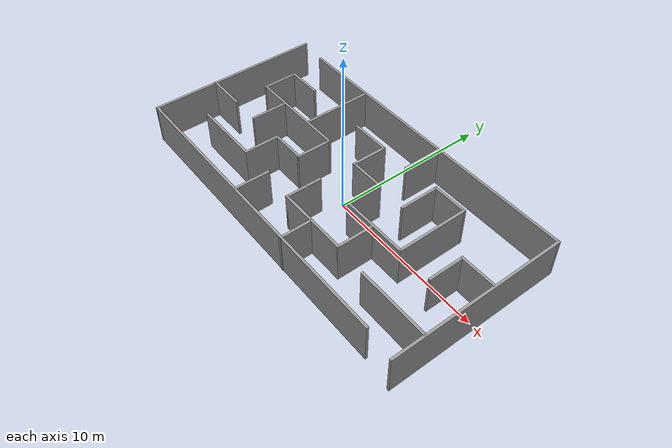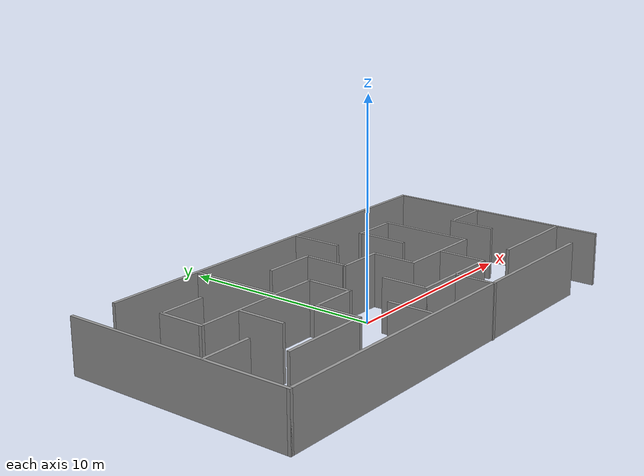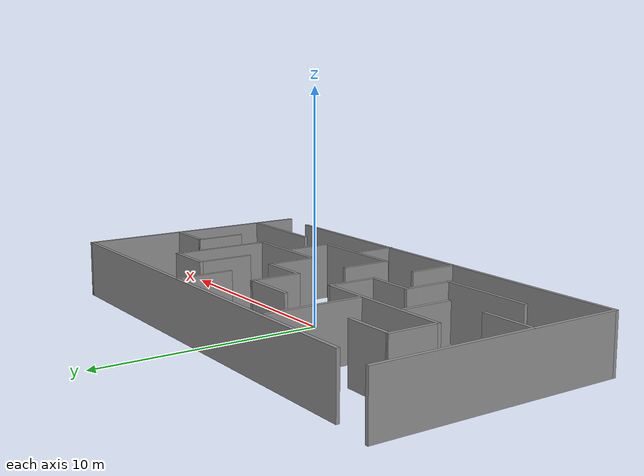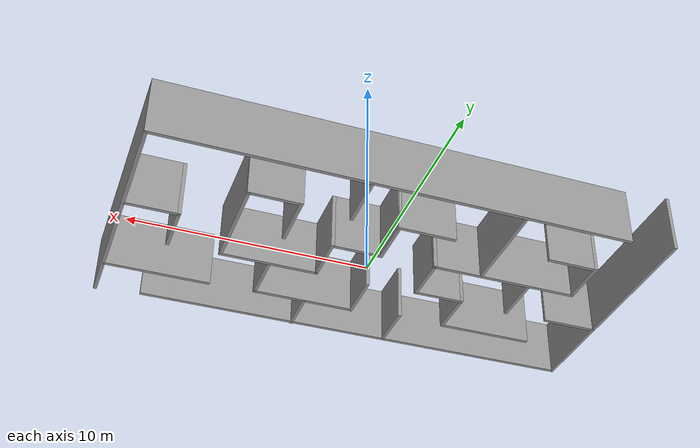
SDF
<?xml version='1.0'?>
<sdf version='1.7'>
  <model name='maze3'>
    <pose>-0.462397 0.132297 0 0 -0 0</pose>
    <link name='Wall_0'>
      <collision name='Wall_0_Collision'>
        <geometry>
          <box>
            <size>11 0.15 2.5</size>
          </box>
        </geometry>
        <pose>0 0 1.25 0 -0 0</pose>
      </collision>
      <visual name='Wall_0_Visual'>
        <pose>0 0 1.25 0 -0 0</pose>
        <geometry>
          <box>
            <size>11 0.15 2.5</size>
          </box>
        </geometry>
        <material>
          <script>
            <uri>file://media/materials/scripts/gazebo.material</uri>
            <name>Gazebo/Grey</name>
          </script>
          <ambient>1 1 1 1</ambient>
        </material>
        <meta>
          <layer>0</layer>
        </meta>
      </visual>
      <pose>-10.7709 0.101139 0 0 -0 -1.5708</pose>
    </link>
    <link name='Wall_1'>
      <collision name='Wall_1_Collision'>
        <geometry>
          <box>
            <size>19.75 0.15 2.5</size>
          </box>
        </geometry>
        <pose>0 0 1.25 0 -0 0</pose>
      </collision>
      <visual name='Wall_1_Visual'>
        <pose>0 0 1.25 0 -0 0</pose>
        <geometry>
          <box>
            <size>19.75 0.15 2.5</size>
          </box>
        </geometry>
        <material>
          <script>
            <uri>file://media/materials/scripts/gazebo.material</uri>
            <name>Gazebo/Grey</name>
          </script>
          <ambient>1 1 1 1</ambient>
        </material>
        <meta>
          <layer>0</layer>
        </meta>
      </visual>
      <pose>-0.970934 -5.32386 0 0 -0 0</pose>
    </link>
    <link name='Wall_10'>
      <collision name='Wall_10_Collision'>
        <geometry>
          <box>
            <size>2.25 0.15 2.5</size>
          </box>
        </geometry>
        <pose>0 0 1.25 0 -0 0</pose>
      </collision>
      <visual name='Wall_10_Visual'>
        <pose>0 0 1.25 0 -0 0</pose>
        <geometry>
          <box>
            <size>2.25 0.15 2.5</size>
          </box>
        </geometry>
        <material>
          <script>
            <uri>file://media/materials/scripts/gazebo.material</uri>
            <name>Gazebo/Grey</name>
          </script>
          <ambient>1 1 1 1</ambient>
        </material>
        <meta>
          <layer>0</layer>
        </meta>
      </visual>
      <pose>-3.21147 -1.17619 0 0 -0 0</pose>
    </link>
    <link name='Wall_11'>
      <collision name='Wall_11_Collision'>
        <geometry>
          <box>
            <size>2.25 0.15 2.5</size>
          </box>
        </geometry>
        <pose>0 0 1.25 0 -0 0</pose>
      </collision>
      <visual name='Wall_11_Visual'>
        <pose>0 0 1.25 0 -0 0</pose>
        <geometry>
          <box>
            <size>2.25 0.15 2.5</size>
          </box>
        </geometry>
        <material>
          <script>
            <uri>file://media/materials/scripts/gazebo.material</uri>
            <name>Gazebo/Grey</name>
          </script>
          <ambient>1 1 1 1</ambient>
        </material>
        <meta>
          <layer>0</layer>
        </meta>
      </visual>
      <pose>-2.16147 -0.126191 0 0 -0 1.5708</pose>
    </link>
    <link name='Wall_12'>
      <collision name='Wall_12_Collision'>
        <geometry>
          <box>
            <size>6.5 0.15 2.5</size>
          </box>
        </geometry>
        <pose>0 0 1.25 0 -0 0</pose>
      </collision>
      <visual name='Wall_12_Visual'>
        <pose>0 0 1.25 0 -0 0</pose>
        <geometry>
          <box>
            <size>6.5 0.15 2.5</size>
          </box>
        </geometry>
        <material>
          <script>
            <uri>file://media/materials/scripts/gazebo.material</uri>
            <name>Gazebo/Grey</name>
          </script>
          <ambient>1 1 1 1</ambient>
        </material>
        <meta>
          <layer>0</layer>
        </meta>
      </visual>
      <pose>-5.33647 0.923809 0 0 -0 3.14159</pose>
    </link>
    <link name='Wall_13'>
      <collision name='Wall_13_Collision'>
        <geometry>
          <box>
            <size>2.25 0.15 2.5</size>
          </box>
        </geometry>
        <pose>0 0 1.25 0 -0 0</pose>
      </collision>
      <visual name='Wall_13_Visual'>
        <pose>0 0 1.25 0 -0 0</pose>
        <geometry>
          <box>
            <size>2.25 0.15 2.5</size>
          </box>
        </geometry>
        <material>
          <script>
            <uri>file://media/materials/scripts/gazebo.material</uri>
            <name>Gazebo/Grey</name>
          </script>
          <ambient>1 1 1 1</ambient>
        </material>
        <meta>
          <layer>0</layer>
        </meta>
      </visual>
      <pose>-8.51147 1.97381 0 0 -0 1.5708</pose>
    </link>
    <link name='Wall_14'>
      <collision name='Wall_14_Collision'>
        <geometry>
          <box>
            <size>2.25 0.15 2.5</size>
          </box>
        </geometry>
        <pose>0 0 1.25 0 -0 0</pose>
      </collision>
      <visual name='Wall_14_Visual'>
        <pose>0 0 1.25 0 -0 0</pose>
        <geometry>
          <box>
            <size>2.25 0.15 2.5</size>
          </box>
        </geometry>
        <material>
          <script>
            <uri>file://media/materials/scripts/gazebo.material</uri>
            <name>Gazebo/Grey</name>
          </script>
          <ambient>1 1 1 1</ambient>
        </material>
        <meta>
          <layer>0</layer>
        </meta>
      </visual>
      <pose>-7.46147 3.02381 0 0 -0 0</pose>
    </link>
    <link name='Wall_16'>
      <collision name='Wall_16_Collision'>
        <geometry>
          <box>
            <size>2.25 0.15 2.5</size>
          </box>
        </geometry>
        <pose>0 0 1.25 0 -0 0</pose>
      </collision>
      <visual name='Wall_16_Visual'>
        <pose>0 0 1.25 0 -0 0</pose>
        <geometry>
          <box>
            <size>2.25 0.15 2.5</size>
          </box>
        </geometry>
        <material>
          <script>
            <uri>file://media/materials/scripts/gazebo.material</uri>
            <name>Gazebo/Grey</name>
          </script>
          <ambient>1 1 1 1</ambient>
        </material>
        <meta>
          <layer>0</layer>
        </meta>
      </visual>
      <pose>-6.47286 -0.257776 0 0 -0 1.5708</pose>
    </link>
    <link name='Wall_18'>
      <collision name='Wall_18_Collision'>
        <geometry>
          <box>
            <size>2.25 0.15 2.5</size>
          </box>
        </geometry>
        <pose>0 0 1.25 0 -0 0</pose>
      </collision>
      <visual name='Wall_18_Visual'>
        <pose>0 0 1.25 0 -0 0</pose>
        <geometry>
          <box>
            <size>2.25 0.15 2.5</size>
          </box>
        </geometry>
        <material>
          <script>
            <uri>file://media/materials/scripts/gazebo.material</uri>
            <name>Gazebo/Grey</name>
          </script>
          <ambient>1 1 1 1</ambient>
        </material>
        <meta>
          <layer>0</layer>
        </meta>
      </visual>
      <pose>-2.18354 -4.25897 0 0 -0 -1.5708</pose>
    </link>
    <link name='Wall_20'>
      <collision name='Wall_20_Collision'>
        <geometry>
          <box>
            <size>2.5 0.15 2.5</size>
          </box>
        </geometry>
        <pose>0 0 1.25 0 -0 0</pose>
      </collision>
      <visual name='Wall_20_Visual'>
        <pose>0 0 1.25 0 -0 0</pose>
        <geometry>
          <box>
            <size>2.5 0.15 2.5</size>
          </box>
        </geometry>
        <material>
          <script>
            <uri>file://media/materials/scripts/gazebo.material</uri>
            <name>Gazebo/Grey</name>
          </script>
          <ambient>1 1 1 1</ambient>
        </material>
        <meta>
          <layer>0</layer>
        </meta>
      </visual>
      <pose>-0.973356 2.9825 0 0 -0 0</pose>
    </link>
    <link name='Wall_21'>
      <collision name='Wall_21_Collision'>
        <geometry>
          <box>
            <size>2.25 0.15 2.5</size>
          </box>
        </geometry>
        <pose>0 0 1.25 0 -0 0</pose>
      </collision>
      <visual name='Wall_21_Visual'>
        <pose>0 0 1.25 0 -0 0</pose>
        <geometry>
          <box>
            <size>2.25 0.15 2.5</size>
          </box>
        </geometry>
        <material>
          <script>
            <uri>file://media/materials/scripts/gazebo.material</uri>
            <name>Gazebo/Grey</name>
          </script>
          <ambient>1 1 1 1</ambient>
        </material>
        <meta>
          <layer>0</layer>
        </meta>
      </visual>
      <pose>0.201644 1.9325 0 0 -0 -1.5708</pose>
    </link>
    <link name='Wall_22'>
      <collision name='Wall_22_Collision'>
        <geometry>
          <box>
            <size>2.25 0.15 2.5</size>
          </box>
        </geometry>
        <pose>0 0 1.25 0 -0 0</pose>
      </collision>
      <visual name='Wall_22_Visual'>
        <pose>0 0 1.25 0 -0 0</pose>
        <geometry>
          <box>
            <size>2.25 0.15 2.5</size>
          </box>
        </geometry>
        <material>
          <script>
            <uri>file://media/materials/scripts/gazebo.material</uri>
            <name>Gazebo/Grey</name>
          </script>
          <ambient>1 1 1 1</ambient>
        </material>
        <meta>
          <layer>0</layer>
        </meta>
      </visual>
      <pose>1.25164 0.882495 0 0 -0 0</pose>
    </link>
    <link name='Wall_23'>
      <collision name='Wall_23_Collision'>
        <geometry>
          <box>
            <size>2.25 0.15 2.5</size>
          </box>
        </geometry>
        <pose>0 0 1.25 0 -0 0</pose>
      </collision>
      <visual name='Wall_23_Visual'>
        <pose>0 0 1.25 0 -0 0</pose>
        <geometry>
          <box>
            <size>2.25 0.15 2.5</size>
          </box>
        </geometry>
        <material>
          <script>
            <uri>file://media/materials/scripts/gazebo.material</uri>
            <name>Gazebo/Grey</name>
          </script>
          <ambient>1 1 1 1</ambient>
        </material>
        <meta>
          <layer>0</layer>
        </meta>
      </visual>
      <pose>2.30164 -0.167505 0 0 -0 -1.5708</pose>
    </link>
    <link name='Wall_24'>
      <collision name='Wall_24_Collision'>
        <geometry>
          <box>
            <size>4.25 0.15 2.5</size>
          </box>
        </geometry>
        <pose>0 0 1.25 0 -0 0</pose>
      </collision>
      <visual name='Wall_24_Visual'>
        <pose>0 0 1.25 0 -0 0</pose>
        <geometry>
          <box>
            <size>4.25 0.15 2.5</size>
          </box>
        </geometry>
        <material>
          <script>
            <uri>file://media/materials/scripts/gazebo.material</uri>
            <name>Gazebo/Grey</name>
          </script>
          <ambient>1 1 1 1</ambient>
        </material>
        <meta>
          <layer>0</layer>
        </meta>
      </visual>
      <pose>4.35164 -1.21751 0 0 -0 0</pose>
    </link>
    <link name='Wall_25'>
      <collision name='Wall_25_Collision'>
        <geometry>
          <box>
            <size>4.5 0.15 2.5</size>
          </box>
        </geometry>
        <pose>0 0 1.25 0 -0 0</pose>
      </collision>
      <visual name='Wall_25_Visual'>
        <pose>0 0 1.25 0 -0 0</pose>
        <geometry>
          <box>
            <size>4.5 0.15 2.5</size>
          </box>
        </geometry>
        <material>
          <script>
            <uri>file://media/materials/scripts/gazebo.material</uri>
            <name>Gazebo/Grey</name>
          </script>
          <ambient>1 1 1 1</ambient>
        </material>
        <meta>
          <layer>0</layer>
        </meta>
      </visual>
      <pose>6.40164 0.957495 0 0 -0 1.5708</pose>
    </link>
    <link name='Wall_26'>
      <collision name='Wall_26_Collision'>
        <geometry>
          <box>
            <size>2.25 0.15 2.5</size>
          </box>
        </geometry>
        <pose>0 0 1.25 0 -0 0</pose>
      </collision>
      <visual name='Wall_26_Visual'>
        <pose>0 0 1.25 0 -0 0</pose>
        <geometry>
          <box>
            <size>2.25 0.15 2.5</size>
          </box>
        </geometry>
        <material>
          <script>
            <uri>file://media/materials/scripts/gazebo.material</uri>
            <name>Gazebo/Grey</name>
          </script>
          <ambient>1 1 1 1</ambient>
        </material>
        <meta>
          <layer>0</layer>
        </meta>
      </visual>
      <pose>5.35164 3.1325 0 0 -0 3.14159</pose>
    </link>
    <link name='Wall_27'>
      <collision name='Wall_27_Collision'>
        <geometry>
          <box>
            <size>2.5 0.15 2.5</size>
          </box>
        </geometry>
        <pose>0 0 1.25 0 -0 0</pose>
      </collision>
      <visual name='Wall_27_Visual'>
        <pose>0 0 1.25 0 -0 0</pose>
        <geometry>
          <box>
            <size>2.5 0.15 2.5</size>
          </box>
        </geometry>
        <material>
          <script>
            <uri>file://media/materials/scripts/gazebo.material</uri>
            <name>Gazebo/Grey</name>
          </script>
          <ambient>1 1 1 1</ambient>
        </material>
        <meta>
          <layer>0</layer>
        </meta>
      </visual>
      <pose>4.30164 1.95749 0 0 -0 -1.5708</pose>
    </link>
    <link name='Wall_29'>
      <collision name='Wall_29_Collision'>
        <geometry>
          <box>
            <size>2.5 0.15 2.5</size>
          </box>
        </geometry>
        <pose>0 0 1.25 0 -0 0</pose>
      </collision>
      <visual name='Wall_29_Visual'>
        <pose>0 0 1.25 0 -0 0</pose>
        <geometry>
          <box>
            <size>2.5 0.15 2.5</size>
          </box>
        </geometry>
        <material>
          <script>
            <uri>file://media/materials/scripts/gazebo.material</uri>
            <name>Gazebo/Grey</name>
          </script>
          <ambient>1 1 1 1</ambient>
        </material>
        <meta>
          <layer>0</layer>
        </meta>
      </visual>
      <pose>2.17863 4.08714 0 0 -0 1.5708</pose>
    </link>
    <link name='Wall_3'>
      <collision name='Wall_3_Collision'>
        <geometry>
          <box>
            <size>19.75 0.15 2.5</size>
          </box>
        </geometry>
        <pose>0 0 1.25 0 -0 0</pose>
      </collision>
      <visual name='Wall_3_Visual'>
        <pose>0 0 1.25 0 -0 0</pose>
        <geometry>
          <box>
            <size>19.75 0.15 2.5</size>
          </box>
        </geometry>
        <material>
          <script>
            <uri>file://media/materials/scripts/gazebo.material</uri>
            <name>Gazebo/Grey</name>
          </script>
          <ambient>1 1 1 1</ambient>
        </material>
        <meta>
          <layer>0</layer>
        </meta>
      </visual>
      <pose>0.970934 5.32386 0 0 -0 0</pose>
    </link>
    <link name='Wall_31'>
      <collision name='Wall_31_Collision'>
        <geometry>
          <box>
            <size>2.25 0.15 2.5</size>
          </box>
        </geometry>
        <pose>0 0 1.25 0 -0 0</pose>
      </collision>
      <visual name='Wall_31_Visual'>
        <pose>0 0 1.25 0 -0 0</pose>
        <geometry>
          <box>
            <size>2.25 0.15 2.5</size>
          </box>
        </geometry>
        <material>
          <script>
            <uri>file://media/materials/scripts/gazebo.material</uri>
            <name>Gazebo/Grey</name>
          </script>
          <ambient>1 1 1 1</ambient>
        </material>
        <meta>
          <layer>0</layer>
        </meta>
      </visual>
      <pose>8.58117 -0.188956 0 0 -0 1.5708</pose>
    </link>
    <link name='Wall_32'>
      <collision name='Wall_32_Collision'>
        <geometry>
          <box>
            <size>2.25 0.15 2.5</size>
          </box>
        </geometry>
        <pose>0 0 1.25 0 -0 0</pose>
      </collision>
      <visual name='Wall_32_Visual'>
        <pose>0 0 1.25 0 -0 0</pose>
        <geometry>
          <box>
            <size>2.25 0.15 2.5</size>
          </box>
        </geometry>
        <material>
          <script>
            <uri>file://media/materials/scripts/gazebo.material</uri>
            <name>Gazebo/Grey</name>
          </script>
          <ambient>1 1 1 1</ambient>
        </material>
        <meta>
          <layer>0</layer>
        </meta>
      </visual>
      <pose>9.63117 0.861044 0 0 -0 0</pose>
    </link>
    <link name='Wall_34'>
      <collision name='Wall_34_Collision'>
        <geometry>
          <box>
            <size>4.5 0.15 2.5</size>
          </box>
        </geometry>
        <pose>0 0 1.25 0 -0 0</pose>
      </collision>
      <visual name='Wall_34_Visual'>
        <pose>0 0 1.25 0 -0 0</pose>
        <geometry>
          <box>
            <size>4.5 0.15 2.5</size>
          </box>
        </geometry>
        <material>
          <script>
            <uri>file://media/materials/scripts/gazebo.material</uri>
            <name>Gazebo/Grey</name>
          </script>
          <ambient>1 1 1 1</ambient>
        </material>
        <meta>
          <layer>0</layer>
        </meta>
      </visual>
      <pose>8.53747 -3.54436 0 0 -0 0</pose>
    </link>
    <link name='Wall_36'>
      <collision name='Wall_36_Collision'>
        <geometry>
          <box>
            <size>2.25 0.15 2.5</size>
          </box>
        </geometry>
        <pose>0 0 1.25 0 -0 0</pose>
      </collision>
      <visual name='Wall_36_Visual'>
        <pose>0 0 1.25 0 -0 0</pose>
        <geometry>
          <box>
            <size>2.25 0.15 2.5</size>
          </box>
        </geometry>
        <material>
          <script>
            <uri>file://media/materials/scripts/gazebo.material</uri>
            <name>Gazebo/Grey</name>
          </script>
          <ambient>1 1 1 1</ambient>
        </material>
        <meta>
          <layer>0</layer>
        </meta>
      </visual>
      <pose>-0.011304 -2.40774 0 0 -0 -1.5708</pose>
    </link>
    <link name='Wall_37'>
      <collision name='Wall_37_Collision'>
        <geometry>
          <box>
            <size>4.5 0.15 2.5</size>
          </box>
        </geometry>
        <pose>0 0 1.25 0 -0 0</pose>
      </collision>
      <visual name='Wall_37_Visual'>
        <pose>0 0 1.25 0 -0 0</pose>
        <geometry>
          <box>
            <size>4.5 0.15 2.5</size>
          </box>
        </geometry>
        <material>
          <script>
            <uri>file://media/materials/scripts/gazebo.material</uri>
            <name>Gazebo/Grey</name>
          </script>
          <ambient>1 1 1 1</ambient>
        </material>
        <meta>
          <layer>0</layer>
        </meta>
      </visual>
      <pose>2.1637 -3.45774 0 0 -0 0</pose>
    </link>
    <link name='Wall_38'>
      <collision name='Wall_38_Collision'>
        <geometry>
          <box>
            <size>2.25 0.15 2.5</size>
          </box>
        </geometry>
        <pose>0 0 1.25 0 -0 0</pose>
      </collision>
      <visual name='Wall_38_Visual'>
        <pose>0 0 1.25 0 -0 0</pose>
        <geometry>
          <box>
            <size>2.25 0.15 2.5</size>
          </box>
        </geometry>
        <material>
          <script>
            <uri>file://media/materials/scripts/gazebo.material</uri>
            <name>Gazebo/Grey</name>
          </script>
          <ambient>1 1 1 1</ambient>
        </material>
        <meta>
          <layer>0</layer>
        </meta>
      </visual>
      <pose>4.3387 -2.40774 0 0 -0 1.5708</pose>
    </link>
    <link name='Wall_4'>
      <collision name='Wall_4_Collision'>
        <geometry>
          <box>
            <size>11 0.15 2.5</size>
          </box>
        </geometry>
        <pose>0 0 1.25 0 -0 0</pose>
      </collision>
      <visual name='Wall_4_Visual'>
        <pose>0 0 1.25 0 -0 0</pose>
        <geometry>
          <box>
            <size>11 0.15 2.5</size>
          </box>
        </geometry>
        <material>
          <script>
            <uri>file://media/materials/scripts/gazebo.material</uri>
            <name>Gazebo/Grey</name>
          </script>
          <ambient>1 1 1 1</ambient>
        </material>
        <meta>
          <layer>0</layer>
        </meta>
      </visual>
      <pose>10.7709 -0.101139 0 0 -0 -1.5708</pose>
    </link>
    <link name='Wall_40'>
      <collision name='Wall_40_Collision'>
        <geometry>
          <box>
            <size>2 0.15 2.5</size>
          </box>
        </geometry>
        <pose>0 0 1.25 0 -0 0</pose>
      </collision>
      <visual name='Wall_40_Visual'>
        <pose>0 0 1.25 0 -0 0</pose>
        <geometry>
          <box>
            <size>2 0.15 2.5</size>
          </box>
        </geometry>
        <material>
          <script>
            <uri>file://media/materials/scripts/gazebo.material</uri>
            <name>Gazebo/Grey</name>
          </script>
          <ambient>1 1 1 1</ambient>
        </material>
        <meta>
          <layer>0</layer>
        </meta>
      </visual>
      <pose>2.1288 -4.44022 0 0 -0 -1.5708</pose>
    </link>
    <link name='Wall_42'>
      <collision name='Wall_42_Collision'>
        <geometry>
          <box>
            <size>4.25 0.15 2.5</size>
          </box>
        </geometry>
        <pose>0 0 1.25 0 -0 0</pose>
      </collision>
      <visual name='Wall_42_Visual'>
        <pose>0 0 1.25 0 -0 0</pose>
        <geometry>
          <box>
            <size>4.25 0.15 2.5</size>
          </box>
        </geometry>
        <material>
          <script>
            <uri>file://media/materials/scripts/gazebo.material</uri>
            <name>Gazebo/Grey</name>
          </script>
          <ambient>1 1 1 1</ambient>
        </material>
        <meta>
          <layer>0</layer>
        </meta>
      </visual>
      <pose>-4.24498 3.11151 0 0 -0 1.5708</pose>
    </link>
    <link name='Wall_6'>
      <collision name='Wall_6_Collision'>
        <geometry>
          <box>
            <size>2.5 0.15 2.5</size>
          </box>
        </geometry>
        <pose>0 0 1.25 0 -0 0</pose>
      </collision>
      <visual name='Wall_6_Visual'>
        <pose>0 0 1.25 0 -0 0</pose>
        <geometry>
          <box>
            <size>2.5 0.15 2.5</size>
          </box>
        </geometry>
        <material>
          <script>
            <uri>file://media/materials/scripts/gazebo.material</uri>
            <name>Gazebo/Grey</name>
          </script>
          <ambient>1 1 1 1</ambient>
        </material>
        <meta>
          <layer>0</layer>
        </meta>
      </visual>
      <pose>-9.58967 -1.30778 0 0 -0 3.14159</pose>
    </link>
    <link name='Wall_8'>
      <collision name='Wall_8_Collision'>
        <geometry>
          <box>
            <size>4.25 0.15 2.5</size>
          </box>
        </geometry>
        <pose>0 0 1.25 0 -0 0</pose>
      </collision>
      <visual name='Wall_8_Visual'>
        <pose>0 0 1.25 0 -0 0</pose>
        <geometry>
          <box>
            <size>4.25 0.15 2.5</size>
          </box>
        </geometry>
        <material>
          <script>
            <uri>file://media/materials/scripts/gazebo.material</uri>
            <name>Gazebo/Grey</name>
          </script>
          <ambient>1 1 1 1</ambient>
        </material>
        <meta>
          <layer>0</layer>
        </meta>
      </visual>
      <pose>-6.31147 -3.27619 0 0 -0 0</pose>
    </link>
    <link name='Wall_9'>
      <collision name='Wall_9_Collision'>
        <geometry>
          <box>
            <size>2.25 0.15 2.5</size>
          </box>
        </geometry>
        <pose>0 0 1.25 0 -0 0</pose>
      </collision>
      <visual name='Wall_9_Visual'>
        <pose>0 0 1.25 0 -0 0</pose>
        <geometry>
          <box>
            <size>2.25 0.15 2.5</size>
          </box>
        </geometry>
        <material>
          <script>
            <uri>file://media/materials/scripts/gazebo.material</uri>
            <name>Gazebo/Grey</name>
          </script>
          <ambient>1 1 1 1</ambient>
        </material>
        <meta>
          <layer>0</layer>
        </meta>
      </visual>
      <pose>-4.26147 -2.22619 0 0 -0 1.5708</pose>
    </link>
    <static>1</static>
  </model>
</sdf>
